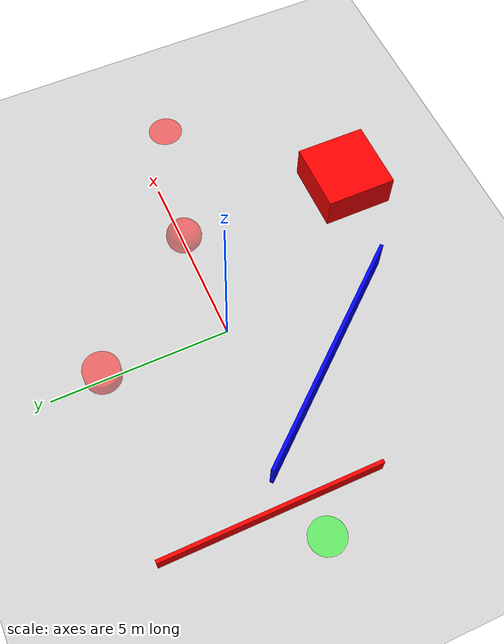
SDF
<?xml version="1.0"?>
<sdf version="1.6">
  <world name="lesson_world">

    <include><uri>model://ground_plane</uri></include>
    <include><uri>model://sun</uri></include>

    <spherical_coordinates>
      <surface_model>EARTH_WGS84</surface_model>
      <latitude_deg>55.7717</latitude_deg>
      <longitude_deg>37.6961</longitude_deg>
      <elevation>0</elevation>
      <heading_deg>0</heading_deg>
    </spherical_coordinates>

    <model name="zone_a">
      <static>true</static>
      <pose>-6 0 0.005 0 0 0</pose>
      <link name="link">
        <visual name="visual">
          <geometry>
            <cylinder>
              <radius>0.5</radius>
              <length>0.01</length>
            </cylinder>
            </geometry>
          <material>
            <ambient>0 1 0 0.5</ambient>
            <diffuse>0 1 0 0.5</diffuse>
          </material>
        </visual>
      </link>
    </model>

     <model name="zone_b">
      <static>true</static>
      <pose>7 -1 0.005 0 0 0</pose>
      <link name="link">
        <visual name="visual">
          <geometry>
            <cylinder>
              <radius>0.5</radius>
              <length>0.01</length>
            </cylinder>
          </geometry>
          <material>
            <ambient>1 0 0 0.5</ambient>
            <diffuse>1 0 0 0.5</diffuse>
          </material>
        </visual>
      </link>
    </model>

    <model name="wall_1">
      <static>true</static>
      <pose>-5 1 0.25 0 0 0</pose>
      <link name="link">
        <collision name="collision">
          <geometry><box><size>0.1 6 0.5</size></box></geometry>
        </collision>
        <visual name="visual">
          <geometry><box><size>0.1 6 0.5</size></box></geometry>
          <material>
            <ambient>1 0 0 1</ambient>
            <diffuse>1 0 0 1</diffuse>
          </material>
        </visual>
      </link>
    </model>

<model name="wall_2">
      <static>true</static>
      <pose>-2 -2 0.5 0 0 0.7</pose>
      <link name="link">
        <collision name="collision">
          <geometry><box><size>0.1 7 1</size></box></geometry>
        </collision>
        <visual name="visual">
          <geometry><box><size>0.1 7 1</size></box></geometry>
          <material>
            <ambient>0 0 1 1</ambient>
            <diffuse>0 0 1 1</diffuse>
          </material>
        </visual>
      </link>
    </model>

<model name="cylinder_1">
    <static>true</static>
    <pose>0 3.5 0.5 0 0 0</pose>
    <link name="link">
    <collision name="collision">
        <geometry>
        <cylinder>
            <radius>0.5</radius>
            <length>0.5</length>
        </cylinder>
        </geometry>
    </collision>
    <visual name="visual">
    <geometry>
        <cylinder>
            <radius>0.5</radius>
            <length>0.5</length>
        </cylinder>
    </geometry>
        <material>
            <ambient>1 0 0 0.5</ambient>
            <diffuse>1 0 0 0.5</diffuse>
        </material>
    </visual>
    </link>
</model>

<model name="sphere_1">
    <static>true</static>
    <pose>3 0 0.5 0 0 0</pose>
    <link name="link">
    <collision name="collision">
        <geometry>
        <sphere>
            <radius>0.5</radius>
        </sphere>
        </geometry>
    </collision>
    <visual name="visual">
    <geometry>
         <sphere>
            <radius>0.5</radius>
        </sphere>
    </geometry>
        <material>
            <ambient>1 0 0 0.5</ambient>
            <diffuse>1 0 0 0.5</diffuse>
        </material>
    </visual>
    </link>
</model>

<model name="box_1">
      <static>true</static>
      <pose>3 -5 0.5 0 0 0</pose>
      <link name="link">
        <collision name="collision">
          <geometry><box><size>2 2 1</size></box></geometry>
        </collision>
        <visual name="visual">
          <geometry><box><size>2 2 1</size></box></geometry>
          <material>
            <ambient>1 0 0 1</ambient>
            <diffuse>1 0 0 1</diffuse>
          </material>
        </visual>
      </link>
    </model>

  </world>
</sdf>
